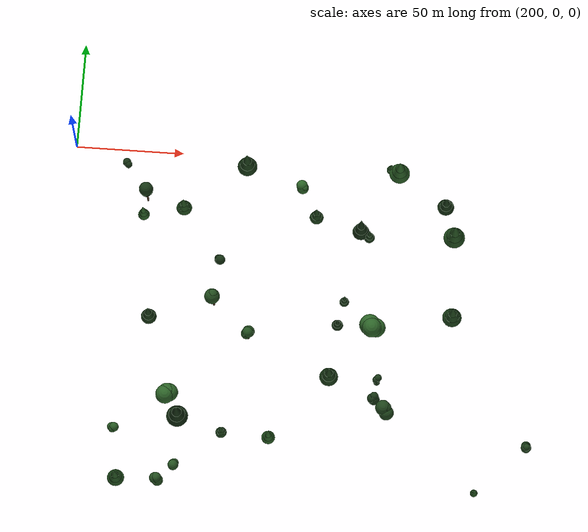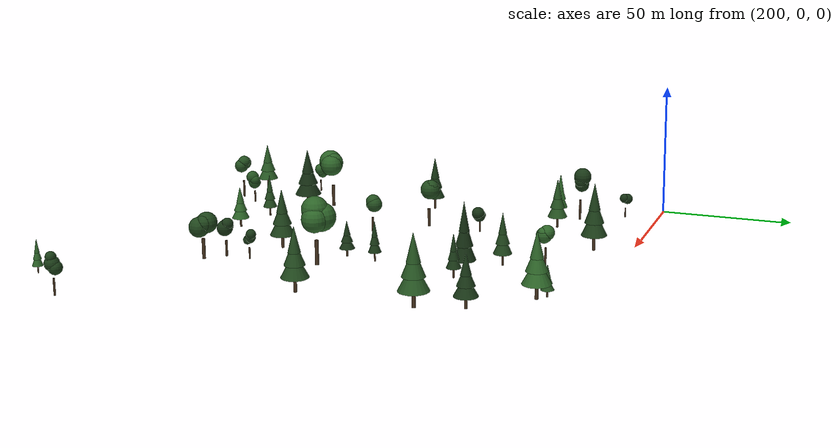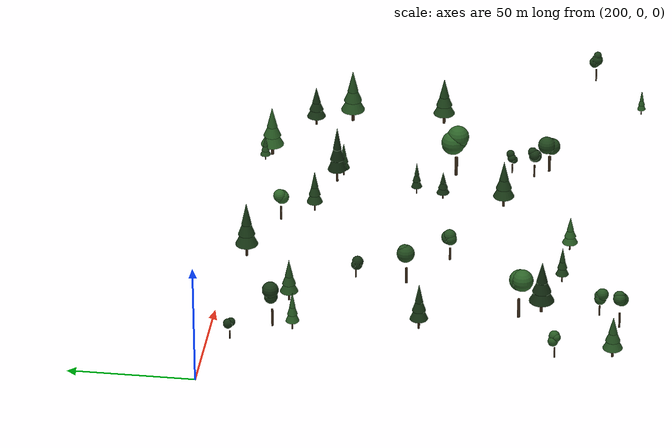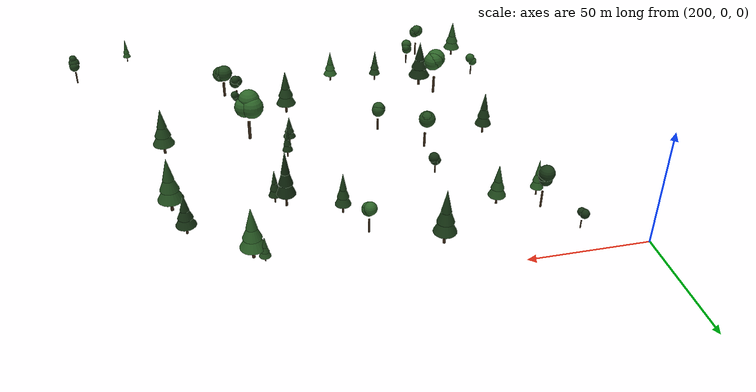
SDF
<sdf version="1.9">
 <world name="detection_world_terrain">
  <model name="tree_1">
   <static>true</static>
   <pose>280.66 -7.96 7.31 0 0 4.75</pose>
   <link name="link">
    <visual name="trunk">
     <pose>0 0 3.97 0 0 0</pose>
     <geometry><cylinder><radius>0.55</radius><length>7.95</length></cylinder></geometry>
     <material><ambient>0.28 0.2 0.12 1</ambient><diffuse>0.28 0.2 0.12 1</diffuse></material>
    </visual>
    <visual name="canopy0">
     <pose>0 0 10.22 0 0 0</pose>
     <geometry><cone><radius>4.55</radius><length>9.54</length></cone></geometry>
     <material><ambient>0.111 0.248 0.099 1</ambient><diffuse>0.111 0.248 0.099 1</diffuse></material>
    </visual>
    <visual name="canopy1">
     <pose>0 0 14.76 0 0 0</pose>
     <geometry><cone><radius>3.41</radius><length>9.54</length></cone></geometry>
     <material><ambient>0.111 0.248 0.099 1</ambient><diffuse>0.111 0.248 0.099 1</diffuse></material>
    </visual>
    <visual name="canopy2">
     <pose>0 0 19.31 0 0 0</pose>
     <geometry><cone><radius>2.05</radius><length>9.54</length></cone></geometry>
     <material><ambient>0.111 0.248 0.099 1</ambient><diffuse>0.111 0.248 0.099 1</diffuse></material>
    </visual>
   </link>
  </model>
  <model name="tree_2">
   <static>true</static>
   <pose>343.67 -84.83 13.31 0 0 1.64</pose>
   <link name="link">
    <visual name="trunk">
     <pose>0 0 4.16 0 0 0</pose>
     <geometry><cylinder><radius>0.64</radius><length>8.32</length></cylinder></geometry>
     <material><ambient>0.28 0.2 0.12 1</ambient><diffuse>0.28 0.2 0.12 1</diffuse></material>
    </visual>
    <visual name="canopy0">
     <pose>-0.61 0.74 18.41 0 0 0</pose>
     <geometry><sphere><radius>4.48</radius></sphere></geometry>
     <material><ambient>0.178 0.397 0.159 1</ambient><diffuse>0.178 0.397 0.159 1</diffuse></material>
    </visual>
    <visual name="canopy1">
     <pose>-0.09 -1.28 15.65 0 0 0</pose>
     <geometry><sphere><radius>4.35</radius></sphere></geometry>
     <material><ambient>0.178 0.397 0.159 1</ambient><diffuse>0.178 0.397 0.159 1</diffuse></material>
    </visual>
    <visual name="canopy2">
     <pose>1.32 1.50 15.90 0 0 0</pose>
     <geometry><sphere><radius>4.82</radius></sphere></geometry>
     <material><ambient>0.178 0.397 0.159 1</ambient><diffuse>0.178 0.397 0.159 1</diffuse></material>
    </visual>
   </link>
  </model>
  <model name="tree_6">
   <static>true</static>
   <pose>339.26 -39.13 12.38 0 0 3.85</pose>
   <link name="link">
    <visual name="trunk">
     <pose>0 0 2.46 0 0 0</pose>
     <geometry><cylinder><radius>0.30</radius><length>4.92</length></cylinder></geometry>
     <material><ambient>0.28 0.2 0.12 1</ambient><diffuse>0.28 0.2 0.12 1</diffuse></material>
    </visual>
    <visual name="canopy0">
     <pose>0 0 6.33 0 0 0</pose>
     <geometry><cone><radius>2.46</radius><length>5.91</length></cone></geometry>
     <material><ambient>0.101 0.225 0.090 1</ambient><diffuse>0.101 0.225 0.090 1</diffuse></material>
    </visual>
    <visual name="canopy1">
     <pose>0 0 9.14 0 0 0</pose>
     <geometry><cone><radius>1.85</radius><length>5.91</length></cone></geometry>
     <material><ambient>0.101 0.225 0.090 1</ambient><diffuse>0.101 0.225 0.090 1</diffuse></material>
    </visual>
    <visual name="canopy2">
     <pose>0 0 11.95 0 0 0</pose>
     <geometry><cone><radius>1.11</radius><length>5.91</length></cone></geometry>
     <material><ambient>0.101 0.225 0.090 1</ambient><diffuse>0.101 0.225 0.090 1</diffuse></material>
    </visual>
   </link>
  </model>
  <model name="tree_7">
   <static>true</static>
   <pose>351.33 -7.98 12.77 0 0 5.29</pose>
   <link name="link">
    <visual name="trunk">
     <pose>0 0 3.61 0 0 0</pose>
     <geometry><cylinder><radius>0.57</radius><length>7.21</length></cylinder></geometry>
     <material><ambient>0.28 0.2 0.12 1</ambient><diffuse>0.28 0.2 0.12 1</diffuse></material>
    </visual>
    <visual name="canopy0">
     <pose>0 0 9.27 0 0 0</pose>
     <geometry><cone><radius>4.74</radius><length>8.65</length></cone></geometry>
     <material><ambient>0.181 0.402 0.161 1</ambient><diffuse>0.181 0.402 0.161 1</diffuse></material>
    </visual>
    <visual name="canopy1">
     <pose>0 0 13.39 0 0 0</pose>
     <geometry><cone><radius>3.56</radius><length>8.65</length></cone></geometry>
     <material><ambient>0.181 0.402 0.161 1</ambient><diffuse>0.181 0.402 0.161 1</diffuse></material>
    </visual>
    <visual name="canopy2">
     <pose>0 0 17.52 0 0 0</pose>
     <geometry><cone><radius>2.13</radius><length>8.65</length></cone></geometry>
     <material><ambient>0.181 0.402 0.161 1</ambient><diffuse>0.181 0.402 0.161 1</diffuse></material>
    </visual>
   </link>
  </model>
  <model name="tree_12">
   <static>true</static>
   <pose>335.19 -36.99 11.69 0 0 6.04</pose>
   <link name="link">
    <visual name="trunk">
     <pose>0 0 4.15 0 0 0</pose>
     <geometry><cylinder><radius>0.46</radius><length>8.30</length></cylinder></geometry>
     <material><ambient>0.28 0.2 0.12 1</ambient><diffuse>0.28 0.2 0.12 1</diffuse></material>
    </visual>
    <visual name="canopy0">
     <pose>0 0 10.68 0 0 0</pose>
     <geometry><cone><radius>3.87</radius><length>9.97</length></cone></geometry>
     <material><ambient>0.083 0.185 0.074 1</ambient><diffuse>0.083 0.185 0.074 1</diffuse></material>
    </visual>
    <visual name="canopy1">
     <pose>0 0 15.42 0 0 0</pose>
     <geometry><cone><radius>2.90</radius><length>9.97</length></cone></geometry>
     <material><ambient>0.083 0.185 0.074 1</ambient><diffuse>0.083 0.185 0.074 1</diffuse></material>
    </visual>
    <visual name="canopy2">
     <pose>0 0 20.17 0 0 0</pose>
     <geometry><cone><radius>1.74</radius><length>9.97</length></cone></geometry>
     <material><ambient>0.083 0.185 0.074 1</ambient><diffuse>0.083 0.185 0.074 1</diffuse></material>
    </visual>
   </link>
  </model>
  <model name="tree_13">
   <static>true</static>
   <pose>256.99 -127.88 5.64 0 0 2.67</pose>
   <link name="link">
    <visual name="trunk">
     <pose>0 0 3.71 0 0 0</pose>
     <geometry><cylinder><radius>0.60</radius><length>7.42</length></cylinder></geometry>
     <material><ambient>0.28 0.2 0.12 1</ambient><diffuse>0.28 0.2 0.12 1</diffuse></material>
    </visual>
    <visual name="canopy0">
     <pose>0 0 9.54 0 0 0</pose>
     <geometry><cone><radius>4.98</radius><length>8.91</length></cone></geometry>
     <material><ambient>0.083 0.185 0.074 1</ambient><diffuse>0.083 0.185 0.074 1</diffuse></material>
    </visual>
    <visual name="canopy1">
     <pose>0 0 13.79 0 0 0</pose>
     <geometry><cone><radius>3.74</radius><length>8.91</length></cone></geometry>
     <material><ambient>0.083 0.185 0.074 1</ambient><diffuse>0.083 0.185 0.074 1</diffuse></material>
    </visual>
    <visual name="canopy2">
     <pose>0 0 18.03 0 0 0</pose>
     <geometry><cone><radius>2.24</radius><length>8.91</length></cone></geometry>
     <material><ambient>0.083 0.185 0.074 1</ambient><diffuse>0.083 0.185 0.074 1</diffuse></material>
    </visual>
   </link>
  </model>
  <model name="tree_14">
   <static>true</static>
   <pose>240.30 -81.63 4.62 0 0 3.16</pose>
   <link name="link">
    <visual name="trunk">
     <pose>0 0 3.33 0 0 0</pose>
     <geometry><cylinder><radius>0.43</radius><length>6.67</length></cylinder></geometry>
     <material><ambient>0.28 0.2 0.12 1</ambient><diffuse>0.28 0.2 0.12 1</diffuse></material>
    </visual>
    <visual name="canopy0">
     <pose>0 0 8.58 0 0 0</pose>
     <geometry><cone><radius>3.58</radius><length>8.00</length></cone></geometry>
     <material><ambient>0.100 0.223 0.089 1</ambient><diffuse>0.100 0.223 0.089 1</diffuse></material>
    </visual>
    <visual name="canopy1">
     <pose>0 0 12.39 0 0 0</pose>
     <geometry><cone><radius>2.69</radius><length>8.00</length></cone></geometry>
     <material><ambient>0.100 0.223 0.089 1</ambient><diffuse>0.100 0.223 0.089 1</diffuse></material>
    </visual>
    <visual name="canopy2">
     <pose>0 0 16.20 0 0 0</pose>
     <geometry><cone><radius>1.61</radius><length>8.00</length></cone></geometry>
     <material><ambient>0.100 0.223 0.089 1</ambient><diffuse>0.100 0.223 0.089 1</diffuse></material>
    </visual>
   </link>
  </model>
  <model name="tree_15">
   <static>true</static>
   <pose>227.88 -135.69 3.73 0 0 1.10</pose>
   <link name="link">
    <visual name="trunk">
     <pose>0 0 2.24 0 0 0</pose>
     <geometry><cylinder><radius>0.29</radius><length>4.48</length></cylinder></geometry>
     <material><ambient>0.28 0.2 0.12 1</ambient><diffuse>0.28 0.2 0.12 1</diffuse></material>
    </visual>
    <visual name="canopy0">
     <pose>0.49 0.61 7.58 0 0 0</pose>
     <geometry><sphere><radius>2.02</radius></sphere></geometry>
     <material><ambient>0.160 0.356 0.142 1</ambient><diffuse>0.160 0.356 0.142 1</diffuse></material>
    </visual>
    <visual name="canopy1">
     <pose>0.68 -0.64 9.20 0 0 0</pose>
     <geometry><sphere><radius>2.16</radius></sphere></geometry>
     <material><ambient>0.160 0.356 0.142 1</ambient><diffuse>0.160 0.356 0.142 1</diffuse></material>
    </visual>
    <visual name="canopy2">
     <pose>-0.23 -0.36 8.94 0 0 0</pose>
     <geometry><sphere><radius>1.82</radius></sphere></geometry>
     <material><ambient>0.160 0.356 0.142 1</ambient><diffuse>0.160 0.356 0.142 1</diffuse></material>
    </visual>
   </link>
  </model>
  <model name="tree_16">
   <static>true</static>
   <pose>314.33 -30.63 9.79 0 0 5.26</pose>
   <link name="link">
    <visual name="trunk">
     <pose>0 0 3.00 0 0 0</pose>
     <geometry><cylinder><radius>0.38</radius><length>5.99</length></cylinder></geometry>
     <material><ambient>0.28 0.2 0.12 1</ambient><diffuse>0.28 0.2 0.12 1</diffuse></material>
    </visual>
    <visual name="canopy0">
     <pose>0 0 7.70 0 0 0</pose>
     <geometry><cone><radius>3.17</radius><length>7.19</length></cone></geometry>
     <material><ambient>0.120 0.266 0.106 1</ambient><diffuse>0.120 0.266 0.106 1</diffuse></material>
    </visual>
    <visual name="canopy1">
     <pose>0 0 11.13 0 0 0</pose>
     <geometry><cone><radius>2.37</radius><length>7.19</length></cone></geometry>
     <material><ambient>0.120 0.266 0.106 1</ambient><diffuse>0.120 0.266 0.106 1</diffuse></material>
    </visual>
    <visual name="canopy2">
     <pose>0 0 14.55 0 0 0</pose>
     <geometry><cone><radius>1.42</radius><length>7.19</length></cone></geometry>
     <material><ambient>0.120 0.266 0.106 1</ambient><diffuse>0.120 0.266 0.106 1</diffuse></material>
    </visual>
   </link>
  </model>
  <model name="tree_20">
   <static>true</static>
   <pose>286.88 -88.60 7.95 0 0 4.74</pose>
   <link name="link">
    <visual name="trunk">
     <pose>0 0 2.68 0 0 0</pose>
     <geometry><cylinder><radius>0.42</radius><length>5.36</length></cylinder></geometry>
     <material><ambient>0.28 0.2 0.12 1</ambient><diffuse>0.28 0.2 0.12 1</diffuse></material>
    </visual>
    <visual name="canopy0">
     <pose>-0.18 -0.21 11.10 0 0 0</pose>
     <geometry><sphere><radius>2.63</radius></sphere></geometry>
     <material><ambient>0.142 0.316 0.127 1</ambient><diffuse>0.142 0.316 0.127 1</diffuse></material>
    </visual>
    <visual name="canopy1">
     <pose>0.34 -0.96 10.12 0 0 0</pose>
     <geometry><sphere><radius>2.43</radius></sphere></geometry>
     <material><ambient>0.142 0.316 0.127 1</ambient><diffuse>0.142 0.316 0.127 1</diffuse></material>
    </visual>
    <visual name="canopy2">
     <pose>-0.72 0.06 10.28 0 0 0</pose>
     <geometry><sphere><radius>2.80</radius></sphere></geometry>
     <material><ambient>0.142 0.316 0.127 1</ambient><diffuse>0.142 0.316 0.127 1</diffuse></material>
    </visual>
   </link>
  </model>
  <model name="tree_23">
   <static>true</static>
   <pose>415.70 -135.94 20.66 0 0 3.51</pose>
   <link name="link">
    <visual name="trunk">
     <pose>0 0 2.72 0 0 0</pose>
     <geometry><cylinder><radius>0.31</radius><length>5.44</length></cylinder></geometry>
     <material><ambient>0.28 0.2 0.12 1</ambient><diffuse>0.28 0.2 0.12 1</diffuse></material>
    </visual>
    <visual name="canopy0">
     <pose>-0.07 0.45 11.90 0 0 0</pose>
     <geometry><sphere><radius>1.67</radius></sphere></geometry>
     <material><ambient>0.111 0.246 0.098 1</ambient><diffuse>0.111 0.246 0.098 1</diffuse></material>
    </visual>
    <visual name="canopy1">
     <pose>0.03 0.23 9.90 0 0 0</pose>
     <geometry><sphere><radius>2.34</radius></sphere></geometry>
     <material><ambient>0.111 0.246 0.098 1</ambient><diffuse>0.111 0.246 0.098 1</diffuse></material>
    </visual>
    <visual name="canopy2">
     <pose>-0.34 -0.75 8.71 0 0 0</pose>
     <geometry><sphere><radius>2.17</radius></sphere></geometry>
     <material><ambient>0.111 0.246 0.098 1</ambient><diffuse>0.111 0.246 0.098 1</diffuse></material>
    </visual>
   </link>
  </model>
  <model name="tree_26">
   <static>true</static>
   <pose>329.70 -70.24 11.73 0 0 3.28</pose>
   <link name="link">
    <visual name="trunk">
     <pose>0 0 2.34 0 0 0</pose>
     <geometry><cylinder><radius>0.26</radius><length>4.67</length></cylinder></geometry>
     <material><ambient>0.28 0.2 0.12 1</ambient><diffuse>0.28 0.2 0.12 1</diffuse></material>
    </visual>
    <visual name="canopy0">
     <pose>0 0 6.01 0 0 0</pose>
     <geometry><cone><radius>2.19</radius><length>5.61</length></cone></geometry>
     <material><ambient>0.100 0.223 0.089 1</ambient><diffuse>0.100 0.223 0.089 1</diffuse></material>
    </visual>
    <visual name="canopy1">
     <pose>0 0 8.68 0 0 0</pose>
     <geometry><cone><radius>1.64</radius><length>5.61</length></cone></geometry>
     <material><ambient>0.100 0.223 0.089 1</ambient><diffuse>0.100 0.223 0.089 1</diffuse></material>
    </visual>
    <visual name="canopy2">
     <pose>0 0 11.35 0 0 0</pose>
     <geometry><cone><radius>0.98</radius><length>5.61</length></cone></geometry>
     <material><ambient>0.100 0.223 0.089 1</ambient><diffuse>0.100 0.223 0.089 1</diffuse></material>
    </visual>
   </link>
  </model>
  <model name="tree_27">
   <static>true</static>
   <pose>234.17 -32.92 4.24 0 0 2.98</pose>
   <link name="link">
    <visual name="trunk">
     <pose>0 0 2.77 0 0 0</pose>
     <geometry><cylinder><radius>0.32</radius><length>5.53</length></cylinder></geometry>
     <material><ambient>0.28 0.2 0.12 1</ambient><diffuse>0.28 0.2 0.12 1</diffuse></material>
    </visual>
    <visual name="canopy0">
     <pose>0 0 7.11 0 0 0</pose>
     <geometry><cone><radius>2.65</radius><length>6.64</length></cone></geometry>
     <material><ambient>0.179 0.398 0.159 1</ambient><diffuse>0.179 0.398 0.159 1</diffuse></material>
    </visual>
    <visual name="canopy1">
     <pose>0 0 10.27 0 0 0</pose>
     <geometry><cone><radius>1.99</radius><length>6.64</length></cone></geometry>
     <material><ambient>0.179 0.398 0.159 1</ambient><diffuse>0.179 0.398 0.159 1</diffuse></material>
    </visual>
    <visual name="canopy2">
     <pose>0 0 13.44 0 0 0</pose>
     <geometry><cone><radius>1.19</radius><length>6.64</length></cone></geometry>
     <material><ambient>0.179 0.398 0.159 1</ambient><diffuse>0.179 0.398 0.159 1</diffuse></material>
    </visual>
   </link>
  </model>
  <model name="tree_34">
   <static>true</static>
   <pose>393.78 -156.60 18.37 0 0 2.08</pose>
   <link name="link">
    <visual name="trunk">
     <pose>0 0 1.85 0 0 0</pose>
     <geometry><cylinder><radius>0.20</radius><length>3.70</length></cylinder></geometry>
     <material><ambient>0.28 0.2 0.12 1</ambient><diffuse>0.28 0.2 0.12 1</diffuse></material>
    </visual>
    <visual name="canopy0">
     <pose>0 0 4.76 0 0 0</pose>
     <geometry><cone><radius>1.70</radius><length>4.44</length></cone></geometry>
     <material><ambient>0.172 0.383 0.153 1</ambient><diffuse>0.172 0.383 0.153 1</diffuse></material>
    </visual>
    <visual name="canopy1">
     <pose>0 0 6.87 0 0 0</pose>
     <geometry><cone><radius>1.28</radius><length>4.44</length></cone></geometry>
     <material><ambient>0.172 0.383 0.153 1</ambient><diffuse>0.172 0.383 0.153 1</diffuse></material>
    </visual>
    <visual name="canopy2">
     <pose>0 0 8.98 0 0 0</pose>
     <geometry><cone><radius>0.77</radius><length>4.44</length></cone></geometry>
     <material><ambient>0.172 0.383 0.153 1</ambient><diffuse>0.172 0.383 0.153 1</diffuse></material>
    </visual>
   </link>
  </model>
  <model name="tree_35">
   <static>true</static>
   <pose>252.14 -119.40 5.47 0 0 3.03</pose>
   <link name="link">
    <visual name="trunk">
     <pose>0 0 4.12 0 0 0</pose>
     <geometry><cylinder><radius>0.57</radius><length>8.25</length></cylinder></geometry>
     <material><ambient>0.28 0.2 0.12 1</ambient><diffuse>0.28 0.2 0.12 1</diffuse></material>
    </visual>
    <visual name="canopy0">
     <pose>0.01 0.21 16.96 0 0 0</pose>
     <geometry><sphere><radius>4.16</radius></sphere></geometry>
     <material><ambient>0.178 0.396 0.159 1</ambient><diffuse>0.178 0.396 0.159 1</diffuse></material>
    </visual>
    <visual name="canopy1">
     <pose>0.73 1.39 17.36 0 0 0</pose>
     <geometry><sphere><radius>4.33</radius></sphere></geometry>
     <material><ambient>0.178 0.396 0.159 1</ambient><diffuse>0.178 0.396 0.159 1</diffuse></material>
    </visual>
    <visual name="canopy2">
     <pose>-0.83 0.10 16.48 0 0 0</pose>
     <geometry><sphere><radius>4.20</radius></sphere></geometry>
     <material><ambient>0.178 0.396 0.159 1</ambient><diffuse>0.178 0.396 0.159 1</diffuse></material>
    </visual>
   </link>
  </model>
  <model name="tree_36">
   <static>true</static>
   <pose>378.21 -37.89 15.67 0 0 0.00</pose>
   <link name="link">
    <visual name="trunk">
     <pose>0 0 3.84 0 0 0</pose>
     <geometry><cylinder><radius>0.59</radius><length>7.67</length></cylinder></geometry>
     <material><ambient>0.28 0.2 0.12 1</ambient><diffuse>0.28 0.2 0.12 1</diffuse></material>
    </visual>
    <visual name="canopy0">
     <pose>0 0 9.86 0 0 0</pose>
     <geometry><cone><radius>4.91</radius><length>9.21</length></cone></geometry>
     <material><ambient>0.152 0.338 0.135 1</ambient><diffuse>0.152 0.338 0.135 1</diffuse></material>
    </visual>
    <visual name="canopy1">
     <pose>0 0 14.25 0 0 0</pose>
     <geometry><cone><radius>3.68</radius><length>9.21</length></cone></geometry>
     <material><ambient>0.152 0.338 0.135 1</ambient><diffuse>0.152 0.338 0.135 1</diffuse></material>
    </visual>
    <visual name="canopy2">
     <pose>0 0 18.63 0 0 0</pose>
     <geometry><cone><radius>2.21</radius><length>9.21</length></cone></geometry>
     <material><ambient>0.152 0.338 0.135 1</ambient><diffuse>0.152 0.338 0.135 1</diffuse></material>
    </visual>
   </link>
  </model>
  <model name="tree_39">
   <static>true</static>
   <pose>231.11 -157.78 3.85 0 0 4.23</pose>
   <link name="link">
    <visual name="trunk">
     <pose>0 0 2.95 0 0 0</pose>
     <geometry><cylinder><radius>0.46</radius><length>5.91</length></cylinder></geometry>
     <material><ambient>0.28 0.2 0.12 1</ambient><diffuse>0.28 0.2 0.12 1</diffuse></material>
    </visual>
    <visual name="canopy0">
     <pose>0 0 7.60 0 0 0</pose>
     <geometry><cone><radius>3.87</radius><length>7.09</length></cone></geometry>
     <material><ambient>0.158 0.352 0.141 1</ambient><diffuse>0.158 0.352 0.141 1</diffuse></material>
    </visual>
    <visual name="canopy1">
     <pose>0 0 10.98 0 0 0</pose>
     <geometry><cone><radius>2.90</radius><length>7.09</length></cone></geometry>
     <material><ambient>0.158 0.352 0.141 1</ambient><diffuse>0.158 0.352 0.141 1</diffuse></material>
    </visual>
    <visual name="canopy2">
     <pose>0 0 14.35 0 0 0</pose>
     <geometry><cone><radius>1.74</radius><length>7.09</length></cone></geometry>
     <material><ambient>0.158 0.352 0.141 1</ambient><diffuse>0.158 0.352 0.141 1</diffuse></material>
    </visual>
   </link>
  </model>
  <model name="tree_41">
   <static>true</static>
   <pose>250.27 -158.96 5.15 0 0 4.95</pose>
   <link name="link">
    <visual name="trunk">
     <pose>0 0 3.29 0 0 0</pose>
     <geometry><cylinder><radius>0.38</radius><length>6.59</length></cylinder></geometry>
     <material><ambient>0.28 0.2 0.12 1</ambient><diffuse>0.28 0.2 0.12 1</diffuse></material>
    </visual>
    <visual name="canopy0">
     <pose>-0.29 -0.22 14.00 0 0 0</pose>
     <geometry><sphere><radius>2.45</radius></sphere></geometry>
     <material><ambient>0.140 0.312 0.125 1</ambient><diffuse>0.140 0.312 0.125 1</diffuse></material>
    </visual>
    <visual name="canopy1">
     <pose>0.73 0.21 12.55 0 0 0</pose>
     <geometry><sphere><radius>2.60</radius></sphere></geometry>
     <material><ambient>0.140 0.312 0.125 1</ambient><diffuse>0.140 0.312 0.125 1</diffuse></material>
    </visual>
    <visual name="canopy2">
     <pose>-0.31 -0.71 13.56 0 0 0</pose>
     <geometry><sphere><radius>2.59</radius></sphere></geometry>
     <material><ambient>0.140 0.312 0.125 1</ambient><diffuse>0.140 0.312 0.125 1</diffuse></material>
    </visual>
   </link>
  </model>
  <model name="tree_48">
   <static>true</static>
   <pose>347.18 -107.42 13.98 0 0 0.46</pose>
   <link name="link">
    <visual name="trunk">
     <pose>0 0 2.00 0 0 0</pose>
     <geometry><cylinder><radius>0.28</radius><length>4.00</length></cylinder></geometry>
     <material><ambient>0.28 0.2 0.12 1</ambient><diffuse>0.28 0.2 0.12 1</diffuse></material>
    </visual>
    <visual name="canopy0">
     <pose>0.56 0.63 8.59 0 0 0</pose>
     <geometry><sphere><radius>1.68</radius></sphere></geometry>
     <material><ambient>0.098 0.218 0.087 1</ambient><diffuse>0.098 0.218 0.087 1</diffuse></material>
    </visual>
    <visual name="canopy1">
     <pose>-0.36 0.36 7.12 0 0 0</pose>
     <geometry><sphere><radius>1.76</radius></sphere></geometry>
     <material><ambient>0.098 0.218 0.087 1</ambient><diffuse>0.098 0.218 0.087 1</diffuse></material>
    </visual>
    <visual name="canopy2">
     <pose>-0.64 -0.52 6.35 0 0 0</pose>
     <geometry><sphere><radius>1.48</radius></sphere></geometry>
     <material><ambient>0.098 0.218 0.087 1</ambient><diffuse>0.098 0.218 0.087 1</diffuse></material>
    </visual>
   </link>
  </model>
  <model name="tree_50">
   <static>true</static>
   <pose>379.30 -75.83 16.59 0 0 2.50</pose>
   <link name="link">
    <visual name="trunk">
     <pose>0 0 3.44 0 0 0</pose>
     <geometry><cylinder><radius>0.53</radius><length>6.87</length></cylinder></geometry>
     <material><ambient>0.28 0.2 0.12 1</ambient><diffuse>0.28 0.2 0.12 1</diffuse></material>
    </visual>
    <visual name="canopy0">
     <pose>0 0 8.84 0 0 0</pose>
     <geometry><cone><radius>4.39</radius><length>8.25</length></cone></geometry>
     <material><ambient>0.129 0.287 0.115 1</ambient><diffuse>0.129 0.287 0.115 1</diffuse></material>
    </visual>
    <visual name="canopy1">
     <pose>0 0 12.76 0 0 0</pose>
     <geometry><cone><radius>3.29</radius><length>8.25</length></cone></geometry>
     <material><ambient>0.129 0.287 0.115 1</ambient><diffuse>0.129 0.287 0.115 1</diffuse></material>
    </visual>
    <visual name="canopy2">
     <pose>0 0 16.69 0 0 0</pose>
     <geometry><cone><radius>1.98</radius><length>8.25</length></cone></geometry>
     <material><ambient>0.129 0.287 0.115 1</ambient><diffuse>0.129 0.287 0.115 1</diffuse></material>
    </visual>
   </link>
  </model>
  <model name="tree_51">
   <static>true</static>
   <pose>373.53 -23.22 15.43 0 0 2.90</pose>
   <link name="link">
    <visual name="trunk">
     <pose>0 0 2.86 0 0 0</pose>
     <geometry><cylinder><radius>0.46</radius><length>5.72</length></cylinder></geometry>
     <material><ambient>0.28 0.2 0.12 1</ambient><diffuse>0.28 0.2 0.12 1</diffuse></material>
    </visual>
    <visual name="canopy0">
     <pose>0 0 7.36 0 0 0</pose>
     <geometry><cone><radius>3.84</radius><length>6.87</length></cone></geometry>
     <material><ambient>0.096 0.214 0.086 1</ambient><diffuse>0.096 0.214 0.086 1</diffuse></material>
    </visual>
    <visual name="canopy1">
     <pose>0 0 10.63 0 0 0</pose>
     <geometry><cone><radius>2.88</radius><length>6.87</length></cone></geometry>
     <material><ambient>0.096 0.214 0.086 1</ambient><diffuse>0.096 0.214 0.086 1</diffuse></material>
    </visual>
    <visual name="canopy2">
     <pose>0 0 13.90 0 0 0</pose>
     <geometry><cone><radius>1.73</radius><length>6.87</length></cone></geometry>
     <material><ambient>0.096 0.214 0.086 1</ambient><diffuse>0.096 0.214 0.086 1</diffuse></material>
    </visual>
   </link>
  </model>
  <model name="tree_52">
   <static>true</static>
   <pose>347.46 -5.68 12.38 0 0 0.05</pose>
   <link name="link">
    <visual name="trunk">
     <pose>0 0 1.75 0 0 0</pose>
     <geometry><cylinder><radius>0.26</radius><length>3.51</length></cylinder></geometry>
     <material><ambient>0.28 0.2 0.12 1</ambient><diffuse>0.28 0.2 0.12 1</diffuse></material>
    </visual>
    <visual name="canopy0">
     <pose>0 0 4.51 0 0 0</pose>
     <geometry><cone><radius>2.16</radius><length>4.21</length></cone></geometry>
     <material><ambient>0.148 0.328 0.131 1</ambient><diffuse>0.148 0.328 0.131 1</diffuse></material>
    </visual>
    <visual name="canopy1">
     <pose>0 0 6.52 0 0 0</pose>
     <geometry><cone><radius>1.62</radius><length>4.21</length></cone></geometry>
     <material><ambient>0.148 0.328 0.131 1</ambient><diffuse>0.148 0.328 0.131 1</diffuse></material>
    </visual>
    <visual name="canopy2">
     <pose>0 0 8.52 0 0 0</pose>
     <geometry><cone><radius>0.97</radius><length>4.21</length></cone></geometry>
     <material><ambient>0.148 0.328 0.131 1</ambient><diffuse>0.148 0.328 0.131 1</diffuse></material>
    </visual>
   </link>
  </model>
  <model name="tree_54">
   <static>true</static>
   <pose>299.25 -135.31 8.77 0 0 3.74</pose>
   <link name="link">
    <visual name="trunk">
     <pose>0 0 2.44 0 0 0</pose>
     <geometry><cylinder><radius>0.37</radius><length>4.89</length></cylinder></geometry>
     <material><ambient>0.28 0.2 0.12 1</ambient><diffuse>0.28 0.2 0.12 1</diffuse></material>
    </visual>
    <visual name="canopy0">
     <pose>0 0 6.29 0 0 0</pose>
     <geometry><cone><radius>3.08</radius><length>5.87</length></cone></geometry>
     <material><ambient>0.179 0.398 0.159 1</ambient><diffuse>0.179 0.398 0.159 1</diffuse></material>
    </visual>
    <visual name="canopy1">
     <pose>0 0 9.08 0 0 0</pose>
     <geometry><cone><radius>2.31</radius><length>5.87</length></cone></geometry>
     <material><ambient>0.179 0.398 0.159 1</ambient><diffuse>0.179 0.398 0.159 1</diffuse></material>
    </visual>
    <visual name="canopy2">
     <pose>0 0 11.87 0 0 0</pose>
     <geometry><cone><radius>1.39</radius><length>5.87</length></cone></geometry>
     <material><ambient>0.179 0.398 0.159 1</ambient><diffuse>0.179 0.398 0.159 1</diffuse></material>
    </visual>
   </link>
  </model>
  <model name="tree_56">
   <static>true</static>
   <pose>252.71 -28.96 5.64 0 0 3.34</pose>
   <link name="link">
    <visual name="trunk">
     <pose>0 0 3.02 0 0 0</pose>
     <geometry><cylinder><radius>0.43</radius><length>6.05</length></cylinder></geometry>
     <material><ambient>0.28 0.2 0.12 1</ambient><diffuse>0.28 0.2 0.12 1</diffuse></material>
    </visual>
    <visual name="canopy0">
     <pose>0 0 7.77 0 0 0</pose>
     <geometry><cone><radius>3.56</radius><length>7.26</length></cone></geometry>
     <material><ambient>0.149 0.331 0.132 1</ambient><diffuse>0.149 0.331 0.132 1</diffuse></material>
    </visual>
    <visual name="canopy1">
     <pose>0 0 11.23 0 0 0</pose>
     <geometry><cone><radius>2.67</radius><length>7.26</length></cone></geometry>
     <material><ambient>0.149 0.331 0.132 1</ambient><diffuse>0.149 0.331 0.132 1</diffuse></material>
    </visual>
    <visual name="canopy2">
     <pose>0 0 14.69 0 0 0</pose>
     <geometry><cone><radius>1.60</radius><length>7.26</length></cone></geometry>
     <material><ambient>0.149 0.331 0.132 1</ambient><diffuse>0.149 0.331 0.132 1</diffuse></material>
    </visual>
   </link>
  </model>
  <model name="tree_58">
   <static>true</static>
   <pose>345.76 -116.60 13.62 0 0 3.90</pose>
   <link name="link">
    <visual name="trunk">
     <pose>0 0 2.68 0 0 0</pose>
     <geometry><cylinder><radius>0.38</radius><length>5.37</length></cylinder></geometry>
     <material><ambient>0.28 0.2 0.12 1</ambient><diffuse>0.28 0.2 0.12 1</diffuse></material>
    </visual>
    <visual name="canopy0">
     <pose>0.32 -0.28 10.25 0 0 0</pose>
     <geometry><sphere><radius>2.37</radius></sphere></geometry>
     <material><ambient>0.096 0.213 0.085 1</ambient><diffuse>0.096 0.213 0.085 1</diffuse></material>
    </visual>
    <visual name="canopy1">
     <pose>-0.04 0.37 9.66 0 0 0</pose>
     <geometry><sphere><radius>2.63</radius></sphere></geometry>
     <material><ambient>0.096 0.213 0.085 1</ambient><diffuse>0.096 0.213 0.085 1</diffuse></material>
    </visual>
    <visual name="canopy2">
     <pose>-0.84 -0.38 11.29 0 0 0</pose>
     <geometry><sphere><radius>1.97</radius></sphere></geometry>
     <material><ambient>0.096 0.213 0.085 1</ambient><diffuse>0.096 0.213 0.085 1</diffuse></material>
    </visual>
   </link>
  </model>
  <model name="tree_59">
   <static>true</static>
   <pose>225.11 -9.68 3.71 0 0 4.72</pose>
   <link name="link">
    <visual name="trunk">
     <pose>0 0 1.77 0 0 0</pose>
     <geometry><cylinder><radius>0.25</radius><length>3.55</length></cylinder></geometry>
     <material><ambient>0.28 0.2 0.12 1</ambient><diffuse>0.28 0.2 0.12 1</diffuse></material>
    </visual>
    <visual name="canopy0">
     <pose>0.45 0.23 7.46 0 0 0</pose>
     <geometry><sphere><radius>1.71</radius></sphere></geometry>
     <material><ambient>0.088 0.196 0.078 1</ambient><diffuse>0.088 0.196 0.078 1</diffuse></material>
    </visual>
    <visual name="canopy1">
     <pose>-0.61 -0.56 7.15 0 0 0</pose>
     <geometry><sphere><radius>1.95</radius></sphere></geometry>
     <material><ambient>0.088 0.196 0.078 1</ambient><diffuse>0.088 0.196 0.078 1</diffuse></material>
    </visual>
    <visual name="canopy2">
     <pose>0.46 0.25 7.42 0 0 0</pose>
     <geometry><sphere><radius>1.39</radius></sphere></geometry>
     <material><ambient>0.088 0.196 0.078 1</ambient><diffuse>0.088 0.196 0.078 1</diffuse></material>
    </visual>
   </link>
  </model>
  <model name="tree_60">
   <static>true</static>
   <pose>277.58 -134.14 7.07 0 0 5.63</pose>
   <link name="link">
    <visual name="trunk">
     <pose>0 0 2.56 0 0 0</pose>
     <geometry><cylinder><radius>0.30</radius><length>5.12</length></cylinder></geometry>
     <material><ambient>0.28 0.2 0.12 1</ambient><diffuse>0.28 0.2 0.12 1</diffuse></material>
    </visual>
    <visual name="canopy0">
     <pose>0 0 6.58 0 0 0</pose>
     <geometry><cone><radius>2.54</radius><length>6.14</length></cone></geometry>
     <material><ambient>0.127 0.281 0.112 1</ambient><diffuse>0.127 0.281 0.112 1</diffuse></material>
    </visual>
    <visual name="canopy1">
     <pose>0 0 9.50 0 0 0</pose>
     <geometry><cone><radius>1.90</radius><length>6.14</length></cone></geometry>
     <material><ambient>0.127 0.281 0.112 1</ambient><diffuse>0.127 0.281 0.112 1</diffuse></material>
    </visual>
    <visual name="canopy2">
     <pose>0 0 12.43 0 0 0</pose>
     <geometry><cone><radius>1.14</radius><length>6.14</length></cone></geometry>
     <material><ambient>0.127 0.281 0.112 1</ambient><diffuse>0.127 0.281 0.112 1</diffuse></material>
    </visual>
   </link>
  </model>
  <model name="tree_61">
   <static>true</static>
   <pose>307.05 -17.92 8.97 0 0 0.53</pose>
   <link name="link">
    <visual name="trunk">
     <pose>0 0 3.03 0 0 0</pose>
     <geometry><cylinder><radius>0.35</radius><length>6.07</length></cylinder></geometry>
     <material><ambient>0.28 0.2 0.12 1</ambient><diffuse>0.28 0.2 0.12 1</diffuse></material>
    </visual>
    <visual name="canopy0">
     <pose>-0.10 0.51 11.22 0 0 0</pose>
     <geometry><sphere><radius>2.61</radius></sphere></geometry>
     <material><ambient>0.179 0.398 0.159 1</ambient><diffuse>0.179 0.398 0.159 1</diffuse></material>
    </visual>
    <visual name="canopy1">
     <pose>-0.20 -0.50 10.39 0 0 0</pose>
     <geometry><sphere><radius>2.74</radius></sphere></geometry>
     <material><ambient>0.179 0.398 0.159 1</ambient><diffuse>0.179 0.398 0.159 1</diffuse></material>
    </visual>
    <visual name="canopy2">
     <pose>0.15 -0.80 11.22 0 0 0</pose>
     <geometry><sphere><radius>2.01</radius></sphere></geometry>
     <material><ambient>0.179 0.398 0.159 1</ambient><diffuse>0.179 0.398 0.159 1</diffuse></material>
    </visual>
   </link>
  </model>
  <model name="tree_62">
   <static>true</static>
   <pose>257.35 -150.62 5.59 0 0 3.65</pose>
   <link name="link">
    <visual name="trunk">
     <pose>0 0 2.17 0 0 0</pose>
     <geometry><cylinder><radius>0.31</radius><length>4.35</length></cylinder></geometry>
     <material><ambient>0.28 0.2 0.12 1</ambient><diffuse>0.28 0.2 0.12 1</diffuse></material>
    </visual>
    <visual name="canopy0">
     <pose>0.32 0.02 7.72 0 0 0</pose>
     <geometry><sphere><radius>2.35</radius></sphere></geometry>
     <material><ambient>0.147 0.327 0.131 1</ambient><diffuse>0.147 0.327 0.131 1</diffuse></material>
    </visual>
    <visual name="canopy1">
     <pose>-0.23 -0.06 8.80 0 0 0</pose>
     <geometry><sphere><radius>2.03</radius></sphere></geometry>
     <material><ambient>0.147 0.327 0.131 1</ambient><diffuse>0.147 0.327 0.131 1</diffuse></material>
    </visual>
    <visual name="canopy2">
     <pose>0.71 0.71 9.72 0 0 0</pose>
     <geometry><sphere><radius>2.41</radius></sphere></geometry>
     <material><ambient>0.147 0.327 0.131 1</ambient><diffuse>0.147 0.327 0.131 1</diffuse></material>
    </visual>
   </link>
  </model>
  <model name="tree_64">
   <static>true</static>
   <pose>350.93 -122.26 13.73 0 0 1.32</pose>
   <link name="link">
    <visual name="trunk">
     <pose>0 0 3.42 0 0 0</pose>
     <geometry><cylinder><radius>0.56</radius><length>6.83</length></cylinder></geometry>
     <material><ambient>0.28 0.2 0.12 1</ambient><diffuse>0.28 0.2 0.12 1</diffuse></material>
    </visual>
    <visual name="canopy0">
     <pose>1.17 -0.13 12.40 0 0 0</pose>
     <geometry><sphere><radius>2.95</radius></sphere></geometry>
     <material><ambient>0.124 0.275 0.110 1</ambient><diffuse>0.124 0.275 0.110 1</diffuse></material>
    </visual>
    <visual name="canopy1">
     <pose>1.07 0.82 12.32 0 0 0</pose>
     <geometry><sphere><radius>3.52</radius></sphere></geometry>
     <material><ambient>0.124 0.275 0.110 1</ambient><diffuse>0.124 0.275 0.110 1</diffuse></material>
    </visual>
    <visual name="canopy2">
     <pose>-0.49 -1.31 10.96 0 0 0</pose>
     <geometry><sphere><radius>3.38</radius></sphere></geometry>
     <material><ambient>0.124 0.275 0.110 1</ambient><diffuse>0.124 0.275 0.110 1</diffuse></material>
    </visual>
   </link>
  </model>
  <model name="tree_65">
   <static>true</static>
   <pose>324.90 -106.15 11.37 0 0 5.40</pose>
   <link name="link">
    <visual name="trunk">
     <pose>0 0 3.40 0 0 0</pose>
     <geometry><cylinder><radius>0.51</radius><length>6.80</length></cylinder></geometry>
     <material><ambient>0.28 0.2 0.12 1</ambient><diffuse>0.28 0.2 0.12 1</diffuse></material>
    </visual>
    <visual name="canopy0">
     <pose>0 0 8.74 0 0 0</pose>
     <geometry><cone><radius>4.25</radius><length>8.16</length></cone></geometry>
     <material><ambient>0.115 0.255 0.102 1</ambient><diffuse>0.115 0.255 0.102 1</diffuse></material>
    </visual>
    <visual name="canopy1">
     <pose>0 0 12.62 0 0 0</pose>
     <geometry><cone><radius>3.19</radius><length>8.16</length></cone></geometry>
     <material><ambient>0.115 0.255 0.102 1</ambient><diffuse>0.115 0.255 0.102 1</diffuse></material>
    </visual>
    <visual name="canopy2">
     <pose>0 0 16.50 0 0 0</pose>
     <geometry><cone><radius>1.91</radius><length>8.16</length></cone></geometry>
     <material><ambient>0.115 0.255 0.102 1</ambient><diffuse>0.115 0.255 0.102 1</diffuse></material>
    </visual>
   </link>
  </model>
  <model name="tree_66">
   <static>true</static>
   <pose>270.93 -53.06 6.78 0 0 2.77</pose>
   <link name="link">
    <visual name="trunk">
     <pose>0 0 1.86 0 0 0</pose>
     <geometry><cylinder><radius>0.30</radius><length>3.72</length></cylinder></geometry>
     <material><ambient>0.28 0.2 0.12 1</ambient><diffuse>0.28 0.2 0.12 1</diffuse></material>
    </visual>
    <visual name="canopy0">
     <pose>-0.06 0.34 5.97 0 0 0</pose>
     <geometry><sphere><radius>2.20</radius></sphere></geometry>
     <material><ambient>0.089 0.197 0.079 1</ambient><diffuse>0.089 0.197 0.079 1</diffuse></material>
    </visual>
    <visual name="canopy1">
     <pose>0.72 -0.06 6.16 0 0 0</pose>
     <geometry><sphere><radius>1.57</radius></sphere></geometry>
     <material><ambient>0.089 0.197 0.079 1</ambient><diffuse>0.089 0.197 0.079 1</diffuse></material>
    </visual>
    <visual name="canopy2">
     <pose>-0.60 0.40 6.94 0 0 0</pose>
     <geometry><sphere><radius>2.30</radius></sphere></geometry>
     <material><ambient>0.089 0.197 0.079 1</ambient><diffuse>0.089 0.197 0.079 1</diffuse></material>
    </visual>
   </link>
  </model>
  <model name="tree_67">
   <static>true</static>
   <pose>235.43 -24.84 4.31 0 0 3.80</pose>
   <link name="link">
    <visual name="trunk">
     <pose>0 0 3.78 0 0 0</pose>
     <geometry><cylinder><radius>0.42</radius><length>7.56</length></cylinder></geometry>
     <material><ambient>0.28 0.2 0.12 1</ambient><diffuse>0.28 0.2 0.12 1</diffuse></material>
    </visual>
    <visual name="canopy0">
     <pose>-0.02 -0.79 16.59 0 0 0</pose>
     <geometry><sphere><radius>3.27</radius></sphere></geometry>
     <material><ambient>0.100 0.223 0.089 1</ambient><diffuse>0.100 0.223 0.089 1</diffuse></material>
    </visual>
    <visual name="canopy1">
     <pose>-0.38 -0.14 14.90 0 0 0</pose>
     <geometry><sphere><radius>2.47</radius></sphere></geometry>
     <material><ambient>0.100 0.223 0.089 1</ambient><diffuse>0.100 0.223 0.089 1</diffuse></material>
    </visual>
    <visual name="canopy2">
     <pose>0.09 -0.63 13.49 0 0 0</pose>
     <geometry><sphere><radius>2.66</radius></sphere></geometry>
     <material><ambient>0.100 0.223 0.089 1</ambient><diffuse>0.100 0.223 0.089 1</diffuse></material>
    </visual>
   </link>
  </model>
  <model name="tree_68">
   <static>true</static>
   <pose>327.23 -81.26 11.58 0 0 4.60</pose>
   <link name="link">
    <visual name="trunk">
     <pose>0 0 2.04 0 0 0</pose>
     <geometry><cylinder><radius>0.31</radius><length>4.08</length></cylinder></geometry>
     <material><ambient>0.28 0.2 0.12 1</ambient><diffuse>0.28 0.2 0.12 1</diffuse></material>
    </visual>
    <visual name="canopy0">
     <pose>0 0 5.25 0 0 0</pose>
     <geometry><cone><radius>2.60</radius><length>4.90</length></cone></geometry>
     <material><ambient>0.092 0.204 0.081 1</ambient><diffuse>0.092 0.204 0.081 1</diffuse></material>
    </visual>
    <visual name="canopy1">
     <pose>0 0 7.58 0 0 0</pose>
     <geometry><cone><radius>1.95</radius><length>4.90</length></cone></geometry>
     <material><ambient>0.092 0.204 0.081 1</ambient><diffuse>0.092 0.204 0.081 1</diffuse></material>
    </visual>
    <visual name="canopy2">
     <pose>0 0 9.91 0 0 0</pose>
     <geometry><cone><radius>1.17</radius><length>4.90</length></cone></geometry>
     <material><ambient>0.092 0.204 0.081 1</ambient><diffuse>0.092 0.204 0.081 1</diffuse></material>
    </visual>
   </link>
  </model>
  <model name="tree_69">
   <static>true</static>
   <pose>269.75 -73.25 6.59 0 0 3.25</pose>
   <link name="link">
    <visual name="trunk">
     <pose>0 0 3.37 0 0 0</pose>
     <geometry><cylinder><radius>0.51</radius><length>6.73</length></cylinder></geometry>
     <material><ambient>0.28 0.2 0.12 1</ambient><diffuse>0.28 0.2 0.12 1</diffuse></material>
    </visual>
    <visual name="canopy0">
     <pose>0.91 -0.96 13.68 0 0 0</pose>
     <geometry><sphere><radius>2.71</radius></sphere></geometry>
     <material><ambient>0.137 0.304 0.121 1</ambient><diffuse>0.137 0.304 0.121 1</diffuse></material>
    </visual>
    <visual name="canopy1">
     <pose>0.60 -0.36 13.82 0 0 0</pose>
     <geometry><sphere><radius>3.57</radius></sphere></geometry>
     <material><ambient>0.137 0.304 0.121 1</ambient><diffuse>0.137 0.304 0.121 1</diffuse></material>
    </visual>
    <visual name="canopy2">
     <pose>0.41 -0.70 14.58 0 0 0</pose>
     <geometry><sphere><radius>2.89</radius></sphere></geometry>
     <material><ambient>0.137 0.304 0.121 1</ambient><diffuse>0.137 0.304 0.121 1</diffuse></material>
    </visual>
   </link>
  </model>
 </world>
</sdf>
